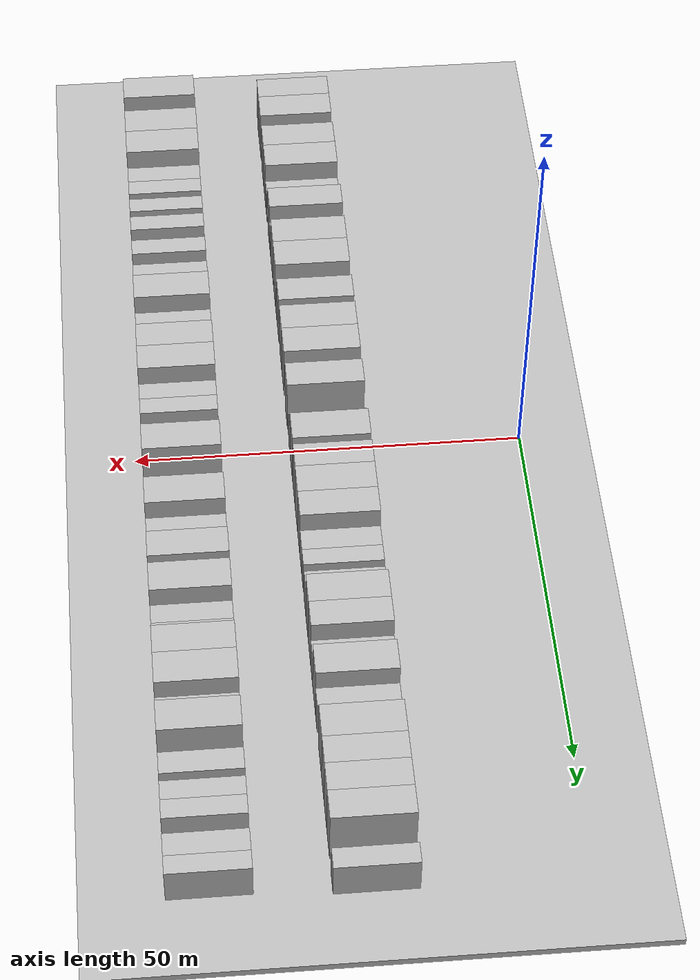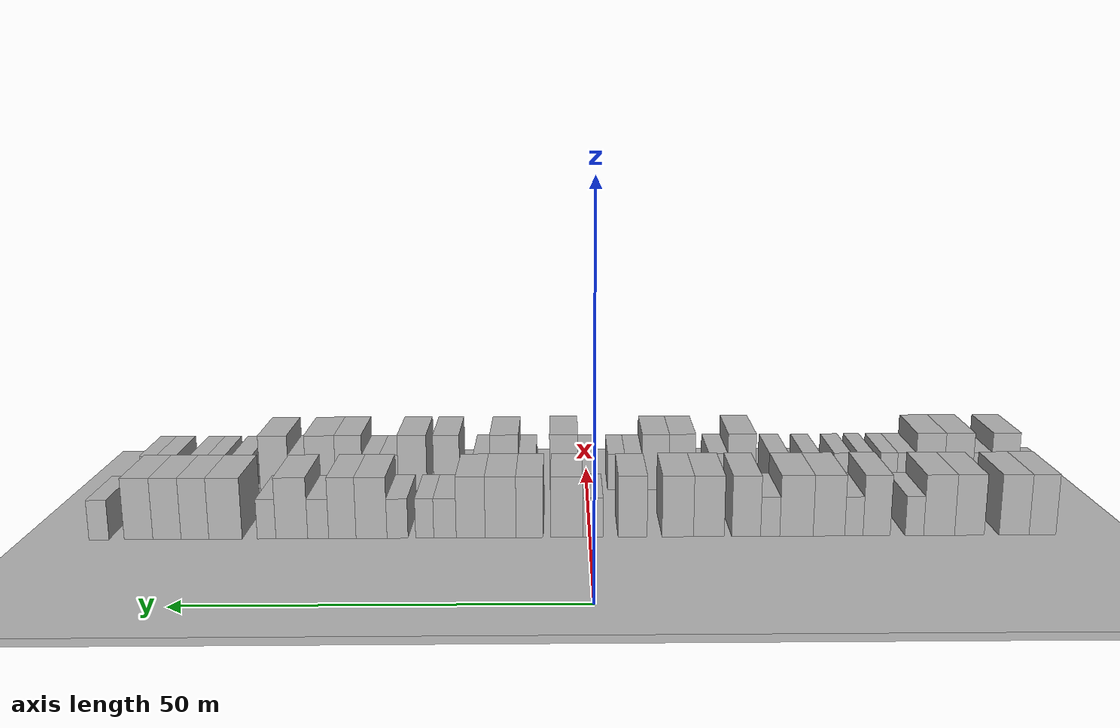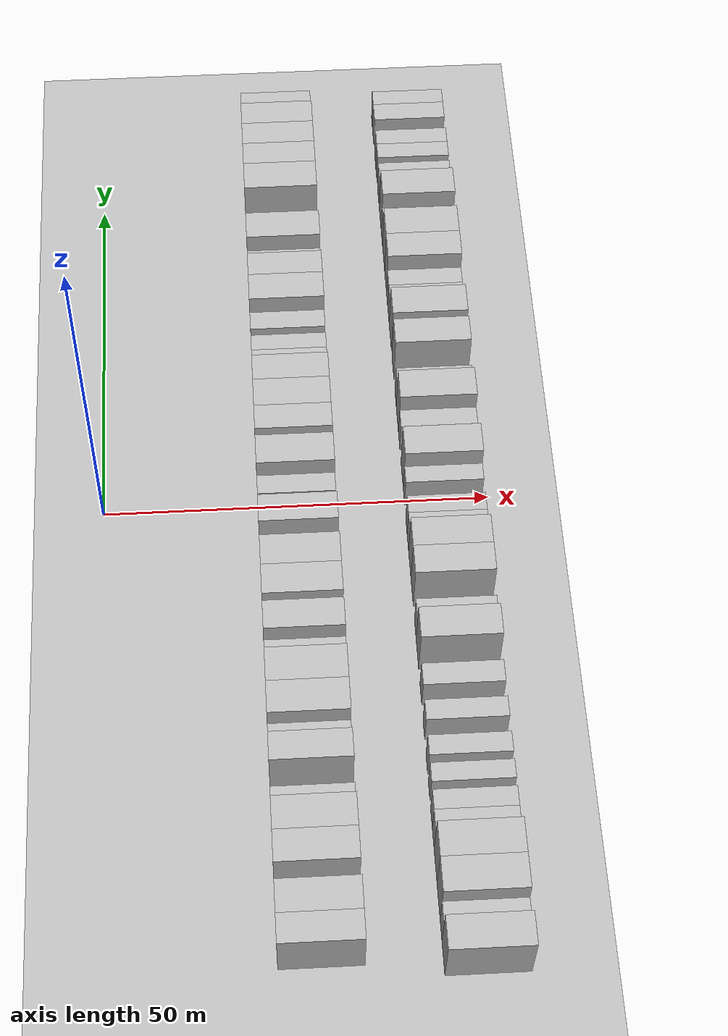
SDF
<sdf version="1.6">
 <world name="default">
  <include><name>ground_plane_1</name><uri>model://HANNAS_ground_plane</uri></include>
  <include>
   <name>ground_plane_2</name>
   <uri>model://HANNAS_ground_plane</uri>
   <pose>100 0 0  0 0 0</pose>
  </include>
  <model name="building_36">
   <static>1</static>
   <pose>25.0000 -60.5467 0 0.000000 0.000000 0.000000</pose>
   <link name="link">
    <pose>0 0 4.50 0 0 0</pose>
    <collision name="collision"><geometry><box><size>10.0000 3.6154 9.0000</size></box></geometry></collision>
    <visual name="visual">
     <cast_shadows>0</cast_shadows>
     <geometry><box><size>10.0000 3.6154 9.0000</size></box></geometry>
     <material>
      <script>
       <uri>model://HANNAS_wall/materials/scripts</uri>
       <uri>model://HANNAS_wall/materials/textures</uri>
       <name>vrc/HANNAS_wall</name>
      </script>
     </material>
    </visual>
   </link>
  </model>
  <model name="building_37">
   <static>1</static>
   <pose>25.0000 -56.7231 0 0.000000 0.000000 0.000000</pose>
   <link name="link">
    <pose>0 0 4.50 0 0 0</pose>
    <collision name="collision"><geometry><box><size>10.0000 4.0318 9.0000</size></box></geometry></collision>
    <visual name="visual">
     <cast_shadows>0</cast_shadows>
     <geometry><box><size>10.0000 4.0318 9.0000</size></box></geometry>
     <material>
      <script>
       <uri>model://HANNAS_wall/materials/scripts</uri>
       <uri>model://HANNAS_wall/materials/textures</uri>
       <name>vrc/HANNAS_wall</name>
      </script>
     </material>
    </visual>
   </link>
  </model>
  <model name="building_38">
   <static>1</static>
   <pose>25.0000 -50.7087 0 0.000000 0.000000 0.000000</pose>
   <link name="link">
    <pose>0 0 4.50 0 0 0</pose>
    <collision name="collision"><geometry><box><size>10.0000 3.9969 9.0000</size></box></geometry></collision>
    <visual name="visual">
     <cast_shadows>0</cast_shadows>
     <geometry><box><size>10.0000 3.9969 9.0000</size></box></geometry>
     <material>
      <script>
       <uri>model://HANNAS_wall/materials/scripts</uri>
       <uri>model://HANNAS_wall/materials/textures</uri>
       <name>vrc/HANNAS_wall</name>
      </script>
     </material>
    </visual>
   </link>
  </model>
  <model name="building_39">
   <static>1</static>
   <pose>25.0000 -46.6285 0 0.000000 0.000000 0.000000</pose>
   <link name="link">
    <pose>0 0 4.50 0 0 0</pose>
    <collision name="collision"><geometry><box><size>10.0000 4.1634 9.0000</size></box></geometry></collision>
    <visual name="visual">
     <cast_shadows>0</cast_shadows>
     <geometry><box><size>10.0000 4.1634 9.0000</size></box></geometry>
     <material>
      <script>
       <uri>model://HANNAS_wall/materials/scripts</uri>
       <uri>model://HANNAS_wall/materials/textures</uri>
       <name>vrc/HANNAS_wall</name>
      </script>
     </material>
    </visual>
   </link>
  </model>
  <model name="building_40">
   <static>1</static>
   <pose>25.0000 -43.3054 0 0.000000 0.000000 0.000000</pose>
   <link name="link">
    <pose>0 0 3.00 0 0 0</pose>
    <collision name="collision"><geometry><box><size>10.0000 2.4829 6.0000</size></box></geometry></collision>
    <visual name="visual">
     <cast_shadows>0</cast_shadows>
     <geometry><box><size>10.0000 2.4829 6.0000</size></box></geometry>
     <material>
      <script>
       <uri>model://HANNAS_wall/materials/scripts</uri>
       <uri>model://HANNAS_wall/materials/textures</uri>
       <name>vrc/HANNAS_wall</name>
      </script>
     </material>
    </visual>
   </link>
  </model>
  <model name="building_41">
   <static>1</static>
   <pose>25.0000 -38.2353 0 0.000000 0.000000 0.000000</pose>
   <link name="link">
    <pose>0 0 4.50 0 0 0</pose>
    <collision name="collision"><geometry><box><size>10.0000 3.6572 9.0000</size></box></geometry></collision>
    <visual name="visual">
     <cast_shadows>0</cast_shadows>
     <geometry><box><size>10.0000 3.6572 9.0000</size></box></geometry>
     <material>
      <script>
       <uri>model://HANNAS_wall/materials/scripts</uri>
       <uri>model://HANNAS_wall/materials/textures</uri>
       <name>vrc/HANNAS_wall</name>
      </script>
     </material>
    </visual>
   </link>
  </model>
  <model name="building_42">
   <static>1</static>
   <pose>25.0000 -35.1828 0 0.000000 0.000000 0.000000</pose>
   <link name="link">
    <pose>0 0 3.00 0 0 0</pose>
    <collision name="collision"><geometry><box><size>10.0000 2.4476 6.0000</size></box></geometry></collision>
    <visual name="visual">
     <cast_shadows>0</cast_shadows>
     <geometry><box><size>10.0000 2.4476 6.0000</size></box></geometry>
     <material>
      <script>
       <uri>model://HANNAS_wall/materials/scripts</uri>
       <uri>model://HANNAS_wall/materials/textures</uri>
       <name>vrc/HANNAS_wall</name>
      </script>
     </material>
    </visual>
   </link>
  </model>
  <model name="building_43">
   <static>1</static>
   <pose>25.0000 -31.8413 0 0.000000 0.000000 0.000000</pose>
   <link name="link">
    <pose>0 0 4.50 0 0 0</pose>
    <collision name="collision"><geometry><box><size>10.0000 4.2353 9.0000</size></box></geometry></collision>
    <visual name="visual">
     <cast_shadows>0</cast_shadows>
     <geometry><box><size>10.0000 4.2353 9.0000</size></box></geometry>
     <material>
      <script>
       <uri>model://HANNAS_wall/materials/scripts</uri>
       <uri>model://HANNAS_wall/materials/textures</uri>
       <name>vrc/HANNAS_wall</name>
      </script>
     </material>
    </visual>
   </link>
  </model>
  <model name="building_44">
   <static>1</static>
   <pose>25.0000 -27.4893 0 0.000000 0.000000 0.000000</pose>
   <link name="link">
    <pose>0 0 4.50 0 0 0</pose>
    <collision name="collision"><geometry><box><size>10.0000 4.4687 9.0000</size></box></geometry></collision>
    <visual name="visual">
     <cast_shadows>0</cast_shadows>
     <geometry><box><size>10.0000 4.4687 9.0000</size></box></geometry>
     <material>
      <script>
       <uri>model://HANNAS_wall/materials/scripts</uri>
       <uri>model://HANNAS_wall/materials/textures</uri>
       <name>vrc/HANNAS_wall</name>
      </script>
     </material>
    </visual>
   </link>
  </model>
  <model name="building_45">
   <static>1</static>
   <pose>25.0000 -23.9686 0 0.000000 0.000000 0.000000</pose>
   <link name="link">
    <pose>0 0 3.00 0 0 0</pose>
    <collision name="collision"><geometry><box><size>10.0000 2.5726 6.0000</size></box></geometry></collision>
    <visual name="visual">
     <cast_shadows>0</cast_shadows>
     <geometry><box><size>10.0000 2.5726 6.0000</size></box></geometry>
     <material>
      <script>
       <uri>model://HANNAS_wall/materials/scripts</uri>
       <uri>model://HANNAS_wall/materials/textures</uri>
       <name>vrc/HANNAS_wall</name>
      </script>
     </material>
    </visual>
   </link>
  </model>
  <model name="building_46">
   <static>1</static>
   <pose>25.0000 -20.7558 0 0.000000 0.000000 0.000000</pose>
   <link name="link">
    <pose>0 0 4.50 0 0 0</pose>
    <collision name="collision"><geometry><box><size>10.0000 3.8530 9.0000</size></box></geometry></collision>
    <visual name="visual">
     <cast_shadows>0</cast_shadows>
     <geometry><box><size>10.0000 3.8530 9.0000</size></box></geometry>
     <material>
      <script>
       <uri>model://HANNAS_wall/materials/scripts</uri>
       <uri>model://HANNAS_wall/materials/textures</uri>
       <name>vrc/HANNAS_wall</name>
      </script>
     </material>
    </visual>
   </link>
  </model>
  <model name="building_47">
   <static>1</static>
   <pose>25.0000 -15.7722 0 0.000000 0.000000 0.000000</pose>
   <link name="link">
    <pose>0 0 4.50 0 0 0</pose>
    <collision name="collision"><geometry><box><size>10.0000 4.1143 9.0000</size></box></geometry></collision>
    <visual name="visual">
     <cast_shadows>0</cast_shadows>
     <geometry><box><size>10.0000 4.1143 9.0000</size></box></geometry>
     <material>
      <script>
       <uri>model://HANNAS_wall/materials/scripts</uri>
       <uri>model://HANNAS_wall/materials/textures</uri>
       <name>vrc/HANNAS_wall</name>
      </script>
     </material>
    </visual>
   </link>
  </model>
  <model name="building_48">
   <static>1</static>
   <pose>25.0000 -11.6120 0 0.000000 0.000000 0.000000</pose>
   <link name="link">
    <pose>0 0 4.50 0 0 0</pose>
    <collision name="collision"><geometry><box><size>10.0000 4.2062 9.0000</size></box></geometry></collision>
    <visual name="visual">
     <cast_shadows>0</cast_shadows>
     <geometry><box><size>10.0000 4.2062 9.0000</size></box></geometry>
     <material>
      <script>
       <uri>model://HANNAS_wall/materials/scripts</uri>
       <uri>model://HANNAS_wall/materials/textures</uri>
       <name>vrc/HANNAS_wall</name>
      </script>
     </material>
    </visual>
   </link>
  </model>
  <model name="building_49">
   <static>1</static>
   <pose>25.0000 -5.5734 0 0.000000 0.000000 0.000000</pose>
   <link name="link">
    <pose>0 0 4.50 0 0 0</pose>
    <collision name="collision"><geometry><box><size>10.0000 3.8709 9.0000</size></box></geometry></collision>
    <visual name="visual">
     <cast_shadows>0</cast_shadows>
     <geometry><box><size>10.0000 3.8709 9.0000</size></box></geometry>
     <material>
      <script>
       <uri>model://HANNAS_wall/materials/scripts</uri>
       <uri>model://HANNAS_wall/materials/textures</uri>
       <name>vrc/HANNAS_wall</name>
      </script>
     </material>
    </visual>
   </link>
  </model>
  <model name="building_50">
   <static>1</static>
   <pose>25.0000 -0.2710 0 0.000000 0.000000 0.000000</pose>
   <link name="link">
    <pose>0 0 3.00 0 0 0</pose>
    <collision name="collision"><geometry><box><size>10.0000 2.7340 6.0000</size></box></geometry></collision>
    <visual name="visual">
     <cast_shadows>0</cast_shadows>
     <geometry><box><size>10.0000 2.7340 6.0000</size></box></geometry>
     <material>
      <script>
       <uri>model://HANNAS_wall/materials/scripts</uri>
       <uri>model://HANNAS_wall/materials/textures</uri>
       <name>vrc/HANNAS_wall</name>
      </script>
     </material>
    </visual>
   </link>
  </model>
  <model name="building_51">
   <static>1</static>
   <pose>25.0000 3.2166 0 0.000000 0.000000 0.000000</pose>
   <link name="link">
    <pose>0 0 4.50 0 0 0</pose>
    <collision name="collision"><geometry><box><size>10.0000 4.2412 9.0000</size></box></geometry></collision>
    <visual name="visual">
     <cast_shadows>0</cast_shadows>
     <geometry><box><size>10.0000 4.2412 9.0000</size></box></geometry>
     <material>
      <script>
       <uri>model://HANNAS_wall/materials/scripts</uri>
       <uri>model://HANNAS_wall/materials/textures</uri>
       <name>vrc/HANNAS_wall</name>
      </script>
     </material>
    </visual>
   </link>
  </model>
  <model name="building_52">
   <static>1</static>
   <pose>25.0000 8.1420 0 0.000000 0.000000 0.000000</pose>
   <link name="link">
    <pose>0 0 4.50 0 0 0</pose>
    <collision name="collision"><geometry><box><size>10.0000 3.6095 9.0000</size></box></geometry></collision>
    <visual name="visual">
     <cast_shadows>0</cast_shadows>
     <geometry><box><size>10.0000 3.6095 9.0000</size></box></geometry>
     <material>
      <script>
       <uri>model://HANNAS_wall/materials/scripts</uri>
       <uri>model://HANNAS_wall/materials/textures</uri>
       <name>vrc/HANNAS_wall</name>
      </script>
     </material>
    </visual>
   </link>
  </model>
  <model name="building_53">
   <static>1</static>
   <pose>25.0000 12.0076 0 0.000000 0.000000 0.000000</pose>
   <link name="link">
    <pose>0 0 4.50 0 0 0</pose>
    <collision name="collision"><geometry><box><size>10.0000 4.1217 9.0000</size></box></geometry></collision>
    <visual name="visual">
     <cast_shadows>0</cast_shadows>
     <geometry><box><size>10.0000 4.1217 9.0000</size></box></geometry>
     <material>
      <script>
       <uri>model://HANNAS_wall/materials/scripts</uri>
       <uri>model://HANNAS_wall/materials/textures</uri>
       <name>vrc/HANNAS_wall</name>
      </script>
     </material>
    </visual>
   </link>
  </model>
  <model name="building_54">
   <static>1</static>
   <pose>25.0000 15.9947 0 0.000000 0.000000 0.000000</pose>
   <link name="link">
    <pose>0 0 4.50 0 0 0</pose>
    <collision name="collision"><geometry><box><size>10.0000 3.8526 9.0000</size></box></geometry></collision>
    <visual name="visual">
     <cast_shadows>0</cast_shadows>
     <geometry><box><size>10.0000 3.8526 9.0000</size></box></geometry>
     <material>
      <script>
       <uri>model://HANNAS_wall/materials/scripts</uri>
       <uri>model://HANNAS_wall/materials/textures</uri>
       <name>vrc/HANNAS_wall</name>
      </script>
     </material>
    </visual>
   </link>
  </model>
  <model name="building_55">
   <static>1</static>
   <pose>25.0000 19.4131 0 0.000000 0.000000 0.000000</pose>
   <link name="link">
    <pose>0 0 3.00 0 0 0</pose>
    <collision name="collision"><geometry><box><size>10.0000 2.9841 6.0000</size></box></geometry></collision>
    <visual name="visual">
     <cast_shadows>0</cast_shadows>
     <geometry><box><size>10.0000 2.9841 6.0000</size></box></geometry>
     <material>
      <script>
       <uri>model://HANNAS_wall/materials/scripts</uri>
       <uri>model://HANNAS_wall/materials/textures</uri>
       <name>vrc/HANNAS_wall</name>
      </script>
     </material>
    </visual>
   </link>
  </model>
  <model name="building_56">
   <static>1</static>
   <pose>25.0000 22.1104 0 0.000000 0.000000 0.000000</pose>
   <link name="link">
    <pose>0 0 3.00 0 0 0</pose>
    <collision name="collision"><geometry><box><size>10.0000 2.4106 6.0000</size></box></geometry></collision>
    <visual name="visual">
     <cast_shadows>0</cast_shadows>
     <geometry><box><size>10.0000 2.4106 6.0000</size></box></geometry>
     <material>
      <script>
       <uri>model://HANNAS_wall/materials/scripts</uri>
       <uri>model://HANNAS_wall/materials/textures</uri>
       <name>vrc/HANNAS_wall</name>
      </script>
     </material>
    </visual>
   </link>
  </model>
  <model name="building_57">
   <static>1</static>
   <pose>25.0000 25.7130 0 0.000000 0.000000 0.000000</pose>
   <link name="link">
    <pose>0 0 3.00 0 0 0</pose>
    <collision name="collision"><geometry><box><size>10.0000 2.7945 6.0000</size></box></geometry></collision>
    <visual name="visual">
     <cast_shadows>0</cast_shadows>
     <geometry><box><size>10.0000 2.7945 6.0000</size></box></geometry>
     <material>
      <script>
       <uri>model://HANNAS_wall/materials/scripts</uri>
       <uri>model://HANNAS_wall/materials/textures</uri>
       <name>vrc/HANNAS_wall</name>
      </script>
     </material>
    </visual>
   </link>
  </model>
  <model name="building_58">
   <static>1</static>
   <pose>25.0000 29.1658 0 0.000000 0.000000 0.000000</pose>
   <link name="link">
    <pose>0 0 4.50 0 0 0</pose>
    <collision name="collision"><geometry><box><size>10.0000 4.1110 9.0000</size></box></geometry></collision>
    <visual name="visual">
     <cast_shadows>0</cast_shadows>
     <geometry><box><size>10.0000 4.1110 9.0000</size></box></geometry>
     <material>
      <script>
       <uri>model://HANNAS_wall/materials/scripts</uri>
       <uri>model://HANNAS_wall/materials/textures</uri>
       <name>vrc/HANNAS_wall</name>
      </script>
     </material>
    </visual>
   </link>
  </model>
  <model name="building_59">
   <static>1</static>
   <pose>25.0000 33.0348 0 0.000000 0.000000 0.000000</pose>
   <link name="link">
    <pose>0 0 4.50 0 0 0</pose>
    <collision name="collision"><geometry><box><size>10.0000 3.6270 9.0000</size></box></geometry></collision>
    <visual name="visual">
     <cast_shadows>0</cast_shadows>
     <geometry><box><size>10.0000 3.6270 9.0000</size></box></geometry>
     <material>
      <script>
       <uri>model://HANNAS_wall/materials/scripts</uri>
       <uri>model://HANNAS_wall/materials/textures</uri>
       <name>vrc/HANNAS_wall</name>
      </script>
     </material>
    </visual>
   </link>
  </model>
  <model name="building_60">
   <static>1</static>
   <pose>25.0000 36.2354 0 0.000000 0.000000 0.000000</pose>
   <link name="link">
    <pose>0 0 3.00 0 0 0</pose>
    <collision name="collision"><geometry><box><size>10.0000 2.7742 6.0000</size></box></geometry></collision>
    <visual name="visual">
     <cast_shadows>0</cast_shadows>
     <geometry><box><size>10.0000 2.7742 6.0000</size></box></geometry>
     <material>
      <script>
       <uri>model://HANNAS_wall/materials/scripts</uri>
       <uri>model://HANNAS_wall/materials/textures</uri>
       <name>vrc/HANNAS_wall</name>
      </script>
     </material>
    </visual>
   </link>
  </model>
  <model name="building_61">
   <static>1</static>
   <pose>25.0000 39.7331 0 0.000000 0.000000 0.000000</pose>
   <link name="link">
    <pose>0 0 4.50 0 0 0</pose>
    <collision name="collision"><geometry><box><size>10.0000 4.2213 9.0000</size></box></geometry></collision>
    <visual name="visual">
     <cast_shadows>0</cast_shadows>
     <geometry><box><size>10.0000 4.2213 9.0000</size></box></geometry>
     <material>
      <script>
       <uri>model://HANNAS_wall/materials/scripts</uri>
       <uri>model://HANNAS_wall/materials/textures</uri>
       <name>vrc/HANNAS_wall</name>
      </script>
     </material>
    </visual>
   </link>
  </model>
  <model name="building_62">
   <static>1</static>
   <pose>25.0000 43.0746 0 0.000000 0.000000 0.000000</pose>
   <link name="link">
    <pose>0 0 3.00 0 0 0</pose>
    <collision name="collision"><geometry><box><size>10.0000 2.4618 6.0000</size></box></geometry></collision>
    <visual name="visual">
     <cast_shadows>0</cast_shadows>
     <geometry><box><size>10.0000 2.4618 6.0000</size></box></geometry>
     <material>
      <script>
       <uri>model://HANNAS_wall/materials/scripts</uri>
       <uri>model://HANNAS_wall/materials/textures</uri>
       <name>vrc/HANNAS_wall</name>
      </script>
     </material>
    </visual>
   </link>
  </model>
  <model name="building_63">
   <static>1</static>
   <pose>25.0000 48.5144 0 0.000000 0.000000 0.000000</pose>
   <link name="link">
    <pose>0 0 4.50 0 0 0</pose>
    <collision name="collision"><geometry><box><size>10.0000 4.4177 9.0000</size></box></geometry></collision>
    <visual name="visual">
     <cast_shadows>0</cast_shadows>
     <geometry><box><size>10.0000 4.4177 9.0000</size></box></geometry>
     <material>
      <script>
       <uri>model://HANNAS_wall/materials/scripts</uri>
       <uri>model://HANNAS_wall/materials/textures</uri>
       <name>vrc/HANNAS_wall</name>
      </script>
     </material>
    </visual>
   </link>
  </model>
  <model name="building_64">
   <static>1</static>
   <pose>25.0000 52.5567 0 0.000000 0.000000 0.000000</pose>
   <link name="link">
    <pose>0 0 4.50 0 0 0</pose>
    <collision name="collision"><geometry><box><size>10.0000 3.6669 9.0000</size></box></geometry></collision>
    <visual name="visual">
     <cast_shadows>0</cast_shadows>
     <geometry><box><size>10.0000 3.6669 9.0000</size></box></geometry>
     <material>
      <script>
       <uri>model://HANNAS_wall/materials/scripts</uri>
       <uri>model://HANNAS_wall/materials/textures</uri>
       <name>vrc/HANNAS_wall</name>
      </script>
     </material>
    </visual>
   </link>
  </model>
  <model name="building_65">
   <static>1</static>
   <pose>25.0000 56.2505 0 0.000000 0.000000 0.000000</pose>
   <link name="link">
    <pose>0 0 4.50 0 0 0</pose>
    <collision name="collision"><geometry><box><size>10.0000 3.7207 9.0000</size></box></geometry></collision>
    <visual name="visual">
     <cast_shadows>0</cast_shadows>
     <geometry><box><size>10.0000 3.7207 9.0000</size></box></geometry>
     <material>
      <script>
       <uri>model://HANNAS_wall/materials/scripts</uri>
       <uri>model://HANNAS_wall/materials/textures</uri>
       <name>vrc/HANNAS_wall</name>
      </script>
     </material>
    </visual>
   </link>
  </model>
  <model name="building_66">
   <static>1</static>
   <pose>25.0000 60.0045 0 0.000000 0.000000 0.000000</pose>
   <link name="link">
    <pose>0 0 4.50 0 0 0</pose>
    <collision name="collision"><geometry><box><size>10.0000 3.7872 9.0000</size></box></geometry></collision>
    <visual name="visual">
     <cast_shadows>0</cast_shadows>
     <geometry><box><size>10.0000 3.7872 9.0000</size></box></geometry>
     <material>
      <script>
       <uri>model://HANNAS_wall/materials/scripts</uri>
       <uri>model://HANNAS_wall/materials/textures</uri>
       <name>vrc/HANNAS_wall</name>
      </script>
     </material>
    </visual>
   </link>
  </model>
  <model name="building_67">
   <static>1</static>
   <pose>25.0000 65.2268 0 0.000000 0.000000 0.000000</pose>
   <link name="link">
    <pose>0 0 3.00 0 0 0</pose>
    <collision name="collision"><geometry><box><size>10.0000 2.6575 6.0000</size></box></geometry></collision>
    <visual name="visual">
     <cast_shadows>0</cast_shadows>
     <geometry><box><size>10.0000 2.6575 6.0000</size></box></geometry>
     <material>
      <script>
       <uri>model://HANNAS_wall/materials/scripts</uri>
       <uri>model://HANNAS_wall/materials/textures</uri>
       <name>vrc/HANNAS_wall</name>
      </script>
     </material>
    </visual>
   </link>
  </model>
  <model name="building_130">
   <static>1</static>
   <pose>44.0000 -62.0064 0 0.000000 0.000000 0.000000</pose>
   <link name="link">
    <pose>0 0 4.50 0 0 0</pose>
    <collision name="collision"><geometry><box><size>10.0000 4.0985 9.0000</size></box></geometry></collision>
    <visual name="visual">
     <cast_shadows>0</cast_shadows>
     <geometry><box><size>10.0000 4.0985 9.0000</size></box></geometry>
     <material>
      <script>
       <uri>model://HANNAS_wall/materials/scripts</uri>
       <uri>model://HANNAS_wall/materials/textures</uri>
       <name>vrc/HANNAS_wall</name>
      </script>
     </material>
    </visual>
   </link>
  </model>
  <model name="building_131">
   <static>1</static>
   <pose>44.0000 -58.6073 0 0.000000 0.000000 0.000000</pose>
   <link name="link">
    <pose>0 0 3.00 0 0 0</pose>
    <collision name="collision"><geometry><box><size>10.0000 2.6997 6.0000</size></box></geometry></collision>
    <visual name="visual">
     <cast_shadows>0</cast_shadows>
     <geometry><box><size>10.0000 2.6997 6.0000</size></box></geometry>
     <material>
      <script>
       <uri>model://HANNAS_wall/materials/scripts</uri>
       <uri>model://HANNAS_wall/materials/textures</uri>
       <name>vrc/HANNAS_wall</name>
      </script>
     </material>
    </visual>
   </link>
  </model>
  <model name="building_132">
   <static>1</static>
   <pose>44.0000 -55.1274 0 0.000000 0.000000 0.000000</pose>
   <link name="link">
    <pose>0 0 4.50 0 0 0</pose>
    <collision name="collision"><geometry><box><size>10.0000 4.2602 9.0000</size></box></geometry></collision>
    <visual name="visual">
     <cast_shadows>0</cast_shadows>
     <geometry><box><size>10.0000 4.2602 9.0000</size></box></geometry>
     <material>
      <script>
       <uri>model://HANNAS_wall/materials/scripts</uri>
       <uri>model://HANNAS_wall/materials/textures</uri>
       <name>vrc/HANNAS_wall</name>
      </script>
     </material>
    </visual>
   </link>
  </model>
  <model name="building_133">
   <static>1</static>
   <pose>44.0000 -50.8398 0 0.000000 0.000000 0.000000</pose>
   <link name="link">
    <pose>0 0 4.50 0 0 0</pose>
    <collision name="collision"><geometry><box><size>10.0000 4.3149 9.0000</size></box></geometry></collision>
    <visual name="visual">
     <cast_shadows>0</cast_shadows>
     <geometry><box><size>10.0000 4.3149 9.0000</size></box></geometry>
     <material>
      <script>
       <uri>model://HANNAS_wall/materials/scripts</uri>
       <uri>model://HANNAS_wall/materials/textures</uri>
       <name>vrc/HANNAS_wall</name>
      </script>
     </material>
    </visual>
   </link>
  </model>
  <model name="building_134">
   <static>1</static>
   <pose>44.0000 -47.3145 0 0.000000 0.000000 0.000000</pose>
   <link name="link">
    <pose>0 0 3.00 0 0 0</pose>
    <collision name="collision"><geometry><box><size>10.0000 2.7357 6.0000</size></box></geometry></collision>
    <visual name="visual">
     <cast_shadows>0</cast_shadows>
     <geometry><box><size>10.0000 2.7357 6.0000</size></box></geometry>
     <material>
      <script>
       <uri>model://HANNAS_wall/materials/scripts</uri>
       <uri>model://HANNAS_wall/materials/textures</uri>
       <name>vrc/HANNAS_wall</name>
      </script>
     </material>
    </visual>
   </link>
  </model>
  <model name="building_135">
   <static>1</static>
   <pose>44.0000 -44.6923 0 0.000000 0.000000 0.000000</pose>
   <link name="link">
    <pose>0 0 3.00 0 0 0</pose>
    <collision name="collision"><geometry><box><size>10.0000 2.5086 6.0000</size></box></geometry></collision>
    <visual name="visual">
     <cast_shadows>0</cast_shadows>
     <geometry><box><size>10.0000 2.5086 6.0000</size></box></geometry>
     <material>
      <script>
       <uri>model://HANNAS_wall/materials/scripts</uri>
       <uri>model://HANNAS_wall/materials/textures</uri>
       <name>vrc/HANNAS_wall</name>
      </script>
     </material>
    </visual>
   </link>
  </model>
  <model name="building_136">
   <static>1</static>
   <pose>44.0000 -41.2274 0 0.000000 0.000000 0.000000</pose>
   <link name="link">
    <pose>0 0 3.00 0 0 0</pose>
    <collision name="collision"><geometry><box><size>10.0000 2.4212 6.0000</size></box></geometry></collision>
    <visual name="visual">
     <cast_shadows>0</cast_shadows>
     <geometry><box><size>10.0000 2.4212 6.0000</size></box></geometry>
     <material>
      <script>
       <uri>model://HANNAS_wall/materials/scripts</uri>
       <uri>model://HANNAS_wall/materials/textures</uri>
       <name>vrc/HANNAS_wall</name>
      </script>
     </material>
    </visual>
   </link>
  </model>
  <model name="building_137">
   <static>1</static>
   <pose>44.0000 -37.7191 0 0.000000 0.000000 0.000000</pose>
   <link name="link">
    <pose>0 0 3.00 0 0 0</pose>
    <collision name="collision"><geometry><box><size>10.0000 2.5956 6.0000</size></box></geometry></collision>
    <visual name="visual">
     <cast_shadows>0</cast_shadows>
     <geometry><box><size>10.0000 2.5956 6.0000</size></box></geometry>
     <material>
      <script>
       <uri>model://HANNAS_wall/materials/scripts</uri>
       <uri>model://HANNAS_wall/materials/textures</uri>
       <name>vrc/HANNAS_wall</name>
      </script>
     </material>
    </visual>
   </link>
  </model>
  <model name="building_138">
   <static>1</static>
   <pose>44.0000 -33.0919 0 0.000000 0.000000 0.000000</pose>
   <link name="link">
    <pose>0 0 3.00 0 0 0</pose>
    <collision name="collision"><geometry><box><size>10.0000 2.6587 6.0000</size></box></geometry></collision>
    <visual name="visual">
     <cast_shadows>0</cast_shadows>
     <geometry><box><size>10.0000 2.6587 6.0000</size></box></geometry>
     <material>
      <script>
       <uri>model://HANNAS_wall/materials/scripts</uri>
       <uri>model://HANNAS_wall/materials/textures</uri>
       <name>vrc/HANNAS_wall</name>
      </script>
     </material>
    </visual>
   </link>
  </model>
  <model name="building_139">
   <static>1</static>
   <pose>44.0000 -28.3121 0 0.000000 0.000000 0.000000</pose>
   <link name="link">
    <pose>0 0 3.00 0 0 0</pose>
    <collision name="collision"><geometry><box><size>10.0000 2.9008 6.0000</size></box></geometry></collision>
    <visual name="visual">
     <cast_shadows>0</cast_shadows>
     <geometry><box><size>10.0000 2.9008 6.0000</size></box></geometry>
     <material>
      <script>
       <uri>model://HANNAS_wall/materials/scripts</uri>
       <uri>model://HANNAS_wall/materials/textures</uri>
       <name>vrc/HANNAS_wall</name>
      </script>
     </material>
    </visual>
   </link>
  </model>
  <model name="building_140">
   <static>1</static>
   <pose>44.0000 -22.7869 0 0.000000 0.000000 0.000000</pose>
   <link name="link">
    <pose>0 0 4.50 0 0 0</pose>
    <collision name="collision"><geometry><box><size>10.0000 4.1496 9.0000</size></box></geometry></collision>
    <visual name="visual">
     <cast_shadows>0</cast_shadows>
     <geometry><box><size>10.0000 4.1496 9.0000</size></box></geometry>
     <material>
      <script>
       <uri>model://HANNAS_wall/materials/scripts</uri>
       <uri>model://HANNAS_wall/materials/textures</uri>
       <name>vrc/HANNAS_wall</name>
      </script>
     </material>
    </visual>
   </link>
  </model>
  <model name="building_141">
   <static>1</static>
   <pose>44.0000 -19.3143 0 0.000000 0.000000 0.000000</pose>
   <link name="link">
    <pose>0 0 3.00 0 0 0</pose>
    <collision name="collision"><geometry><box><size>10.0000 2.7956 6.0000</size></box></geometry></collision>
    <visual name="visual">
     <cast_shadows>0</cast_shadows>
     <geometry><box><size>10.0000 2.7956 6.0000</size></box></geometry>
     <material>
      <script>
       <uri>model://HANNAS_wall/materials/scripts</uri>
       <uri>model://HANNAS_wall/materials/textures</uri>
       <name>vrc/HANNAS_wall</name>
      </script>
     </material>
    </visual>
   </link>
  </model>
  <model name="building_142">
   <static>1</static>
   <pose>44.0000 -13.9696 0 0.000000 0.000000 0.000000</pose>
   <link name="link">
    <pose>0 0 4.50 0 0 0</pose>
    <collision name="collision"><geometry><box><size>10.0000 3.8938 9.0000</size></box></geometry></collision>
    <visual name="visual">
     <cast_shadows>0</cast_shadows>
     <geometry><box><size>10.0000 3.8938 9.0000</size></box></geometry>
     <material>
      <script>
       <uri>model://HANNAS_wall/materials/scripts</uri>
       <uri>model://HANNAS_wall/materials/textures</uri>
       <name>vrc/HANNAS_wall</name>
      </script>
     </material>
    </visual>
   </link>
  </model>
  <model name="building_143">
   <static>1</static>
   <pose>44.0000 -10.0180 0 0.000000 0.000000 0.000000</pose>
   <link name="link">
    <pose>0 0 4.50 0 0 0</pose>
    <collision name="collision"><geometry><box><size>10.0000 4.0095 9.0000</size></box></geometry></collision>
    <visual name="visual">
     <cast_shadows>0</cast_shadows>
     <geometry><box><size>10.0000 4.0095 9.0000</size></box></geometry>
     <material>
      <script>
       <uri>model://HANNAS_wall/materials/scripts</uri>
       <uri>model://HANNAS_wall/materials/textures</uri>
       <name>vrc/HANNAS_wall</name>
      </script>
     </material>
    </visual>
   </link>
  </model>
  <model name="building_144">
   <static>1</static>
   <pose>44.0000 -6.7232 0 0.000000 0.000000 0.000000</pose>
   <link name="link">
    <pose>0 0 3.00 0 0 0</pose>
    <collision name="collision"><geometry><box><size>10.0000 2.5800 6.0000</size></box></geometry></collision>
    <visual name="visual">
     <cast_shadows>0</cast_shadows>
     <geometry><box><size>10.0000 2.5800 6.0000</size></box></geometry>
     <material>
      <script>
       <uri>model://HANNAS_wall/materials/scripts</uri>
       <uri>model://HANNAS_wall/materials/textures</uri>
       <name>vrc/HANNAS_wall</name>
      </script>
     </material>
    </visual>
   </link>
  </model>
  <model name="building_145">
   <static>1</static>
   <pose>44.0000 -4.1764 0 0.000000 0.000000 0.000000</pose>
   <link name="link">
    <pose>0 0 3.00 0 0 0</pose>
    <collision name="collision"><geometry><box><size>10.0000 2.5137 6.0000</size></box></geometry></collision>
    <visual name="visual">
     <cast_shadows>0</cast_shadows>
     <geometry><box><size>10.0000 2.5137 6.0000</size></box></geometry>
     <material>
      <script>
       <uri>model://HANNAS_wall/materials/scripts</uri>
       <uri>model://HANNAS_wall/materials/textures</uri>
       <name>vrc/HANNAS_wall</name>
      </script>
     </material>
    </visual>
   </link>
  </model>
  <model name="building_146">
   <static>1</static>
   <pose>44.0000 0.2824 0 0.000000 0.000000 0.000000</pose>
   <link name="link">
    <pose>0 0 3.00 0 0 0</pose>
    <collision name="collision"><geometry><box><size>10.0000 2.4039 6.0000</size></box></geometry></collision>
    <visual name="visual">
     <cast_shadows>0</cast_shadows>
     <geometry><box><size>10.0000 2.4039 6.0000</size></box></geometry>
     <material>
      <script>
       <uri>model://HANNAS_wall/materials/scripts</uri>
       <uri>model://HANNAS_wall/materials/textures</uri>
       <name>vrc/HANNAS_wall</name>
      </script>
     </material>
    </visual>
   </link>
  </model>
  <model name="building_147">
   <static>1</static>
   <pose>44.0000 3.5744 0 0.000000 0.000000 0.000000</pose>
   <link name="link">
    <pose>0 0 4.50 0 0 0</pose>
    <collision name="collision"><geometry><box><size>10.0000 4.1801 9.0000</size></box></geometry></collision>
    <visual name="visual">
     <cast_shadows>0</cast_shadows>
     <geometry><box><size>10.0000 4.1801 9.0000</size></box></geometry>
     <material>
      <script>
       <uri>model://HANNAS_wall/materials/scripts</uri>
       <uri>model://HANNAS_wall/materials/textures</uri>
       <name>vrc/HANNAS_wall</name>
      </script>
     </material>
    </visual>
   </link>
  </model>
  <model name="building_148">
   <static>1</static>
   <pose>44.0000 8.9497 0 0.000000 0.000000 0.000000</pose>
   <link name="link">
    <pose>0 0 3.00 0 0 0</pose>
    <collision name="collision"><geometry><box><size>10.0000 2.5704 6.0000</size></box></geometry></collision>
    <visual name="visual">
     <cast_shadows>0</cast_shadows>
     <geometry><box><size>10.0000 2.5704 6.0000</size></box></geometry>
     <material>
      <script>
       <uri>model://HANNAS_wall/materials/scripts</uri>
       <uri>model://HANNAS_wall/materials/textures</uri>
       <name>vrc/HANNAS_wall</name>
      </script>
     </material>
    </visual>
   </link>
  </model>
  <model name="building_149">
   <static>1</static>
   <pose>44.0000 12.3462 0 0.000000 0.000000 0.000000</pose>
   <link name="link">
    <pose>0 0 4.50 0 0 0</pose>
    <collision name="collision"><geometry><box><size>10.0000 4.2227 9.0000</size></box></geometry></collision>
    <visual name="visual">
     <cast_shadows>0</cast_shadows>
     <geometry><box><size>10.0000 4.2227 9.0000</size></box></geometry>
     <material>
      <script>
       <uri>model://HANNAS_wall/materials/scripts</uri>
       <uri>model://HANNAS_wall/materials/textures</uri>
       <name>vrc/HANNAS_wall</name>
      </script>
     </material>
    </visual>
   </link>
  </model>
  <model name="building_150">
   <static>1</static>
   <pose>44.0000 15.7061 0 0.000000 0.000000 0.000000</pose>
   <link name="link">
    <pose>0 0 3.00 0 0 0</pose>
    <collision name="collision"><geometry><box><size>10.0000 2.4971 6.0000</size></box></geometry></collision>
    <visual name="visual">
     <cast_shadows>0</cast_shadows>
     <geometry><box><size>10.0000 2.4971 6.0000</size></box></geometry>
     <material>
      <script>
       <uri>model://HANNAS_wall/materials/scripts</uri>
       <uri>model://HANNAS_wall/materials/textures</uri>
       <name>vrc/HANNAS_wall</name>
      </script>
     </material>
    </visual>
   </link>
  </model>
  <model name="building_151">
   <static>1</static>
   <pose>44.0000 20.8841 0 0.000000 0.000000 0.000000</pose>
   <link name="link">
    <pose>0 0 4.50 0 0 0</pose>
    <collision name="collision"><geometry><box><size>10.0000 3.8590 9.0000</size></box></geometry></collision>
    <visual name="visual">
     <cast_shadows>0</cast_shadows>
     <geometry><box><size>10.0000 3.8590 9.0000</size></box></geometry>
     <material>
      <script>
       <uri>model://HANNAS_wall/materials/scripts</uri>
       <uri>model://HANNAS_wall/materials/textures</uri>
       <name>vrc/HANNAS_wall</name>
      </script>
     </material>
    </visual>
   </link>
  </model>
  <model name="building_152">
   <static>1</static>
   <pose>44.0000 25.9338 0 0.000000 0.000000 0.000000</pose>
   <link name="link">
    <pose>0 0 4.50 0 0 0</pose>
    <collision name="collision"><geometry><box><size>10.0000 4.2404 9.0000</size></box></geometry></collision>
    <visual name="visual">
     <cast_shadows>0</cast_shadows>
     <geometry><box><size>10.0000 4.2404 9.0000</size></box></geometry>
     <material>
      <script>
       <uri>model://HANNAS_wall/materials/scripts</uri>
       <uri>model://HANNAS_wall/materials/textures</uri>
       <name>vrc/HANNAS_wall</name>
      </script>
     </material>
    </visual>
   </link>
  </model>
  <model name="building_153">
   <static>1</static>
   <pose>44.0000 29.4019 0 0.000000 0.000000 0.000000</pose>
   <link name="link">
    <pose>0 0 3.00 0 0 0</pose>
    <collision name="collision"><geometry><box><size>10.0000 2.6959 6.0000</size></box></geometry></collision>
    <visual name="visual">
     <cast_shadows>0</cast_shadows>
     <geometry><box><size>10.0000 2.6959 6.0000</size></box></geometry>
     <material>
      <script>
       <uri>model://HANNAS_wall/materials/scripts</uri>
       <uri>model://HANNAS_wall/materials/textures</uri>
       <name>vrc/HANNAS_wall</name>
      </script>
     </material>
    </visual>
   </link>
  </model>
  <model name="building_154">
   <static>1</static>
   <pose>44.0000 32.0384 0 0.000000 0.000000 0.000000</pose>
   <link name="link">
    <pose>0 0 3.00 0 0 0</pose>
    <collision name="collision"><geometry><box><size>10.0000 2.5769 6.0000</size></box></geometry></collision>
    <visual name="visual">
     <cast_shadows>0</cast_shadows>
     <geometry><box><size>10.0000 2.5769 6.0000</size></box></geometry>
     <material>
      <script>
       <uri>model://HANNAS_wall/materials/scripts</uri>
       <uri>model://HANNAS_wall/materials/textures</uri>
       <name>vrc/HANNAS_wall</name>
      </script>
     </material>
    </visual>
   </link>
  </model>
  <model name="building_155">
   <static>1</static>
   <pose>44.0000 35.3079 0 0.000000 0.000000 0.000000</pose>
   <link name="link">
    <pose>0 0 4.50 0 0 0</pose>
    <collision name="collision"><geometry><box><size>10.0000 3.9622 9.0000</size></box></geometry></collision>
    <visual name="visual">
     <cast_shadows>0</cast_shadows>
     <geometry><box><size>10.0000 3.9622 9.0000</size></box></geometry>
     <material>
      <script>
       <uri>model://HANNAS_wall/materials/scripts</uri>
       <uri>model://HANNAS_wall/materials/textures</uri>
       <name>vrc/HANNAS_wall</name>
      </script>
     </material>
    </visual>
   </link>
  </model>
  <model name="building_156">
   <static>1</static>
   <pose>44.0000 39.4911 0 0.000000 0.000000 0.000000</pose>
   <link name="link">
    <pose>0 0 4.50 0 0 0</pose>
    <collision name="collision"><geometry><box><size>10.0000 4.4041 9.0000</size></box></geometry></collision>
    <visual name="visual">
     <cast_shadows>0</cast_shadows>
     <geometry><box><size>10.0000 4.4041 9.0000</size></box></geometry>
     <material>
      <script>
       <uri>model://HANNAS_wall/materials/scripts</uri>
       <uri>model://HANNAS_wall/materials/textures</uri>
       <name>vrc/HANNAS_wall</name>
      </script>
     </material>
    </visual>
   </link>
  </model>
  <model name="building_157">
   <static>1</static>
   <pose>44.0000 42.9483 0 0.000000 0.000000 0.000000</pose>
   <link name="link">
    <pose>0 0 3.00 0 0 0</pose>
    <collision name="collision"><geometry><box><size>10.0000 2.5104 6.0000</size></box></geometry></collision>
    <visual name="visual">
     <cast_shadows>0</cast_shadows>
     <geometry><box><size>10.0000 2.5104 6.0000</size></box></geometry>
     <material>
      <script>
       <uri>model://HANNAS_wall/materials/scripts</uri>
       <uri>model://HANNAS_wall/materials/textures</uri>
       <name>vrc/HANNAS_wall</name>
      </script>
     </material>
    </visual>
   </link>
  </model>
  <model name="building_158">
   <static>1</static>
   <pose>44.0000 46.3220 0 0.000000 0.000000 0.000000</pose>
   <link name="link">
    <pose>0 0 4.50 0 0 0</pose>
    <collision name="collision"><geometry><box><size>10.0000 4.2370 9.0000</size></box></geometry></collision>
    <visual name="visual">
     <cast_shadows>0</cast_shadows>
     <geometry><box><size>10.0000 4.2370 9.0000</size></box></geometry>
     <material>
      <script>
       <uri>model://HANNAS_wall/materials/scripts</uri>
       <uri>model://HANNAS_wall/materials/textures</uri>
       <name>vrc/HANNAS_wall</name>
      </script>
     </material>
    </visual>
   </link>
  </model>
  <model name="building_159">
   <static>1</static>
   <pose>44.0000 50.9167 0 0.000000 0.000000 0.000000</pose>
   <link name="link">
    <pose>0 0 3.00 0 0 0</pose>
    <collision name="collision"><geometry><box><size>10.0000 2.9523 6.0000</size></box></geometry></collision>
    <visual name="visual">
     <cast_shadows>0</cast_shadows>
     <geometry><box><size>10.0000 2.9523 6.0000</size></box></geometry>
     <material>
      <script>
       <uri>model://HANNAS_wall/materials/scripts</uri>
       <uri>model://HANNAS_wall/materials/textures</uri>
       <name>vrc/HANNAS_wall</name>
      </script>
     </material>
    </visual>
   </link>
  </model>
  <model name="building_160">
   <static>1</static>
   <pose>44.0000 54.6610 0 0.000000 0.000000 0.000000</pose>
   <link name="link">
    <pose>0 0 3.00 0 0 0</pose>
    <collision name="collision"><geometry><box><size>10.0000 2.5364 6.0000</size></box></geometry></collision>
    <visual name="visual">
     <cast_shadows>0</cast_shadows>
     <geometry><box><size>10.0000 2.5364 6.0000</size></box></geometry>
     <material>
      <script>
       <uri>model://HANNAS_wall/materials/scripts</uri>
       <uri>model://HANNAS_wall/materials/textures</uri>
       <name>vrc/HANNAS_wall</name>
      </script>
     </material>
    </visual>
   </link>
  </model>
  <model name="building_161">
   <static>1</static>
   <pose>44.0000 57.2105 0 0.000000 0.000000 0.000000</pose>
   <link name="link">
    <pose>0 0 3.00 0 0 0</pose>
    <collision name="collision"><geometry><box><size>10.0000 2.5627 6.0000</size></box></geometry></collision>
    <visual name="visual">
     <cast_shadows>0</cast_shadows>
     <geometry><box><size>10.0000 2.5627 6.0000</size></box></geometry>
     <material>
      <script>
       <uri>model://HANNAS_wall/materials/scripts</uri>
       <uri>model://HANNAS_wall/materials/textures</uri>
       <name>vrc/HANNAS_wall</name>
      </script>
     </material>
    </visual>
   </link>
  </model>
  <model name="building_162">
   <static>1</static>
   <pose>44.0000 61.9540 0 0.000000 0.000000 0.000000</pose>
   <link name="link">
    <pose>0 0 3.00 0 0 0</pose>
    <collision name="collision"><geometry><box><size>10.0000 2.9241 6.0000</size></box></geometry></collision>
    <visual name="visual">
     <cast_shadows>0</cast_shadows>
     <geometry><box><size>10.0000 2.9241 6.0000</size></box></geometry>
     <material>
      <script>
       <uri>model://HANNAS_wall/materials/scripts</uri>
       <uri>model://HANNAS_wall/materials/textures</uri>
       <name>vrc/HANNAS_wall</name>
      </script>
     </material>
    </visual>
   </link>
  </model>
  <model name="building_163">
   <static>1</static>
   <pose>44.0000 64.6337 0 0.000000 0.000000 0.000000</pose>
   <link name="link">
    <pose>0 0 3.00 0 0 0</pose>
    <collision name="collision"><geometry><box><size>10.0000 2.4354 6.0000</size></box></geometry></collision>
    <visual name="visual">
     <cast_shadows>0</cast_shadows>
     <geometry><box><size>10.0000 2.4354 6.0000</size></box></geometry>
     <material>
      <script>
       <uri>model://HANNAS_wall/materials/scripts</uri>
       <uri>model://HANNAS_wall/materials/textures</uri>
       <name>vrc/HANNAS_wall</name>
      </script>
     </material>
    </visual>
   </link>
  </model>
 </world>
</sdf>
